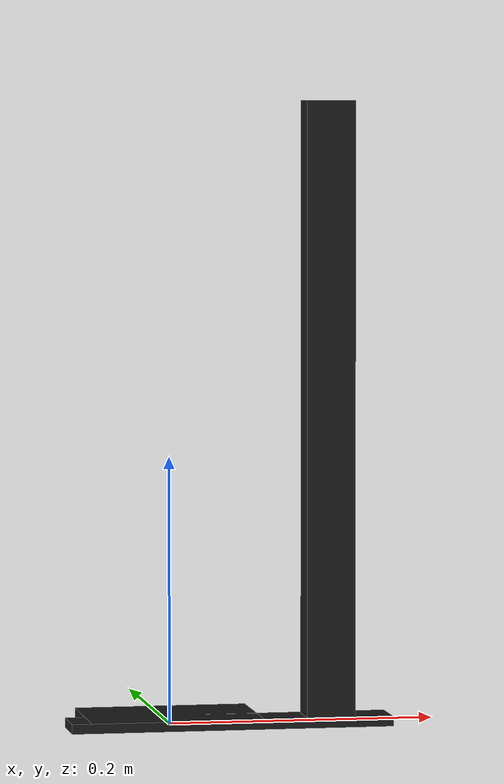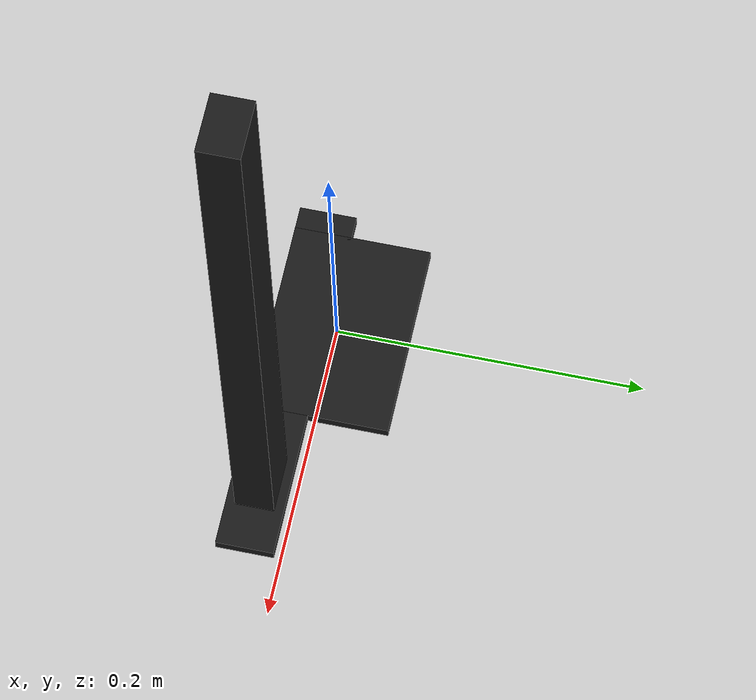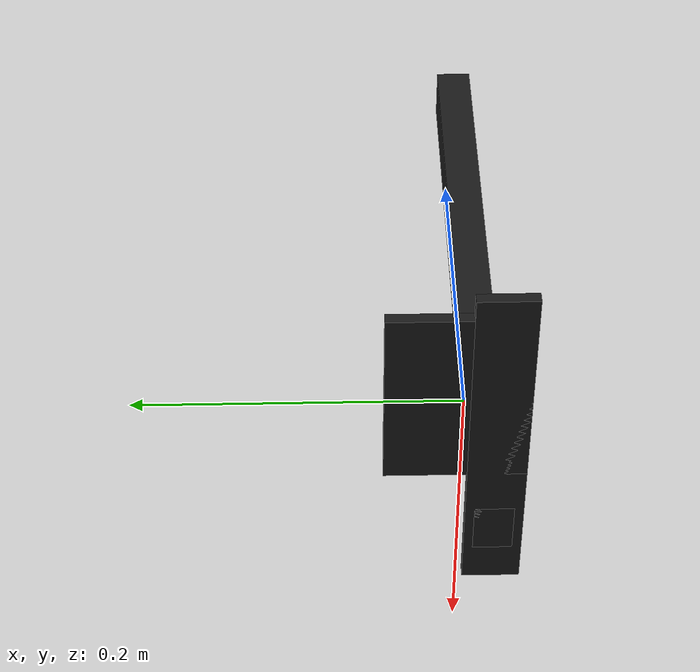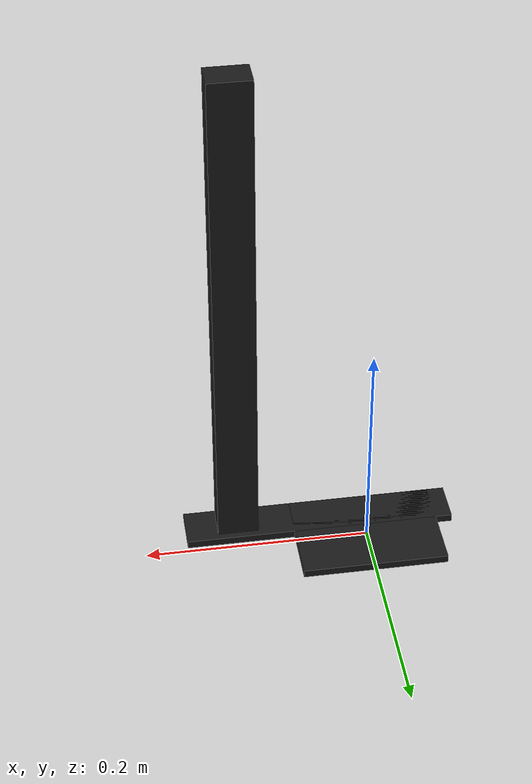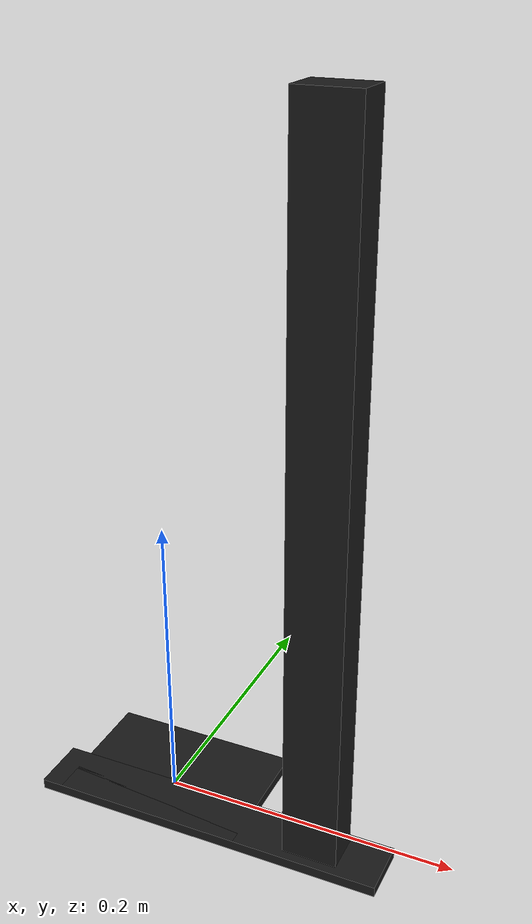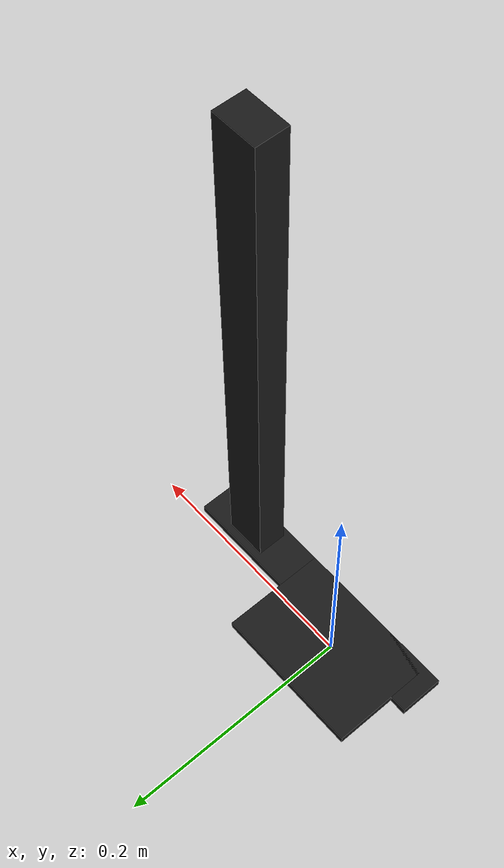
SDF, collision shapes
<?xml version="1.0" ?>
<sdf version="1.6">
  <model name="Camera_Arm">
    <link name="camera_arm_link">
      <visual name="camera_arm_visual">
        <geometry>
          <mesh>
            <uri>camera_arm_visual.glb</uri>
          </mesh>
        </geometry>
        <material>
          <diffuse>0.1 0.1 0.1</diffuse>
          <specular>1.0 1.0 1.0</specular>
          <pbr>
            <metal>
              <roughness>0.2</roughness>
            </metal>
          </pbr>
      </material>
      </visual>
      <collision name="arm_base_collider_box">
        <pose>0.000302 0.002826 0.0036 1.570796 -0.0 1.570796</pose>
        <geometry>
          <box>
            <size>0.0896 0.0072 0.129977</size>
          </box>
        </geometry>
      </collision>
      <collision name="arm_base_collider_box.001">
        <pose>0.041515 -0.023274 0.0036 1.570796 -0.0 1.570796</pose>
        <geometry>
          <box>
            <size>0.037401 0.0072 0.24207</size>
          </box>
        </geometry>
      </collision>
      <collision name="cam_mount_bottom_collider_box">
        <pose>0.116034 -0.023268 0.232682 1.570796 -0.0 4.712389</pose>
        <geometry>
          <box>
            <size>0.02541 0.465364 0.036632</size>
          </box>
        </geometry>
      </collision>
    </link>
  </model>
</sdf>
